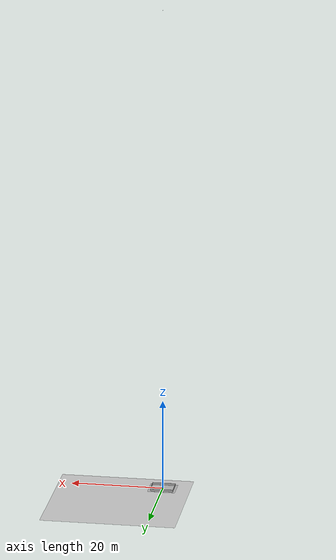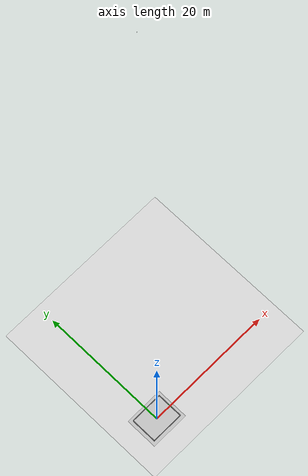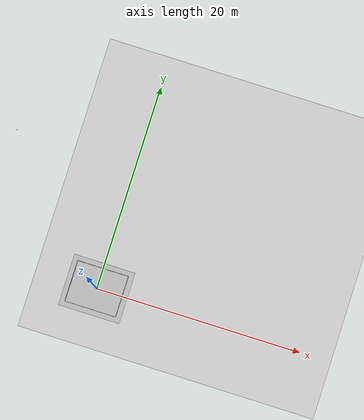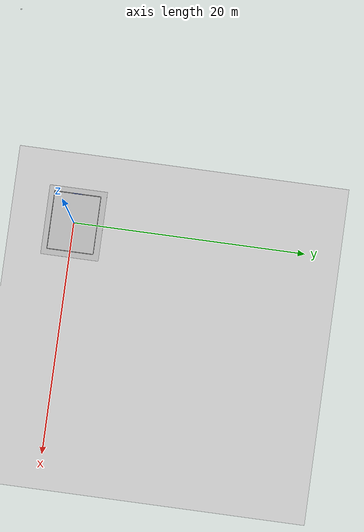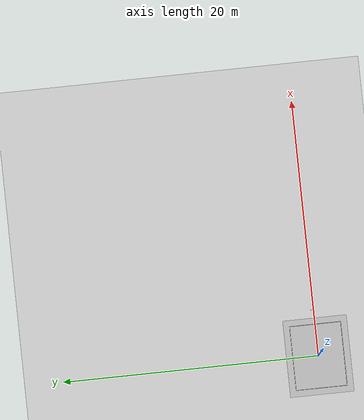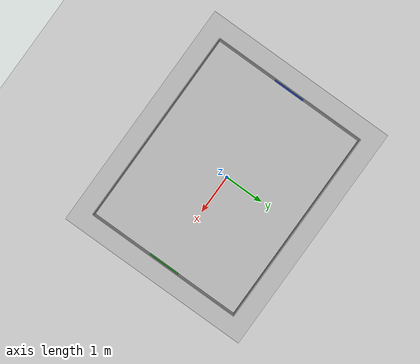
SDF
<sdf version="1.4">
 <world name="aip_world">
  <physics type="ode">
   <max_step_size>0.004</max_step_size>
   <real_time_factor>1</real_time_factor>
   <real_time_update_rate>300</real_time_update_rate>
  </physics>
  <scene><ambient>0.5 0.5 0.5 1.0</ambient><shadows>0</shadows></scene>
  <include><uri>model://ground_plane</uri></include>
  <include><uri>model://sun</uri></include>
  <include><uri>model://aip_field_line</uri></include>
  <light name="light" type="point">
   <cast_shadows>false</cast_shadows>
   <pose>-12 3 1 0 0 0</pose>
   <diffuse>127 127 127 255</diffuse>
   <specular>25 25 25 255</specular>
   <attenuation>
    <range>20.0</range>
    <linear>0.01</linear>
    <constant>0.7</constant>
    <quadratic>0.00</quadratic>
   </attenuation>
  </light>
  <include><uri>model://overview_cam_ros</uri><pose>0 0 7 0 0 0</pose><name>top_camera</name></include>
 </world>
</sdf>

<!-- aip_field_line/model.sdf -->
<sdf version="1.5">
  <model name="aip_field_line">
    <pose>0 0 0 0 0 0</pose>
    <static>true</static>
    <link name="field">
      <pose>0 0 0.01 0 0 0</pose>
      <collision name="collision">
        <geometry>
          <plane>
            <normal>0 0 1</normal>
            <size>6 5</size>
          </plane>
        </geometry>
        <surface>
          <friction>
            <ode>
              <mu>100</mu>
              <mu2>50</mu2>
            </ode>
          </friction>
        </surface>
      </collision>
      <visual name="carpet">
        <cast_shadows>false</cast_shadows>
        <geometry>
          <plane>
            <normal>0 0 1</normal>
            <size>6 5</size>
          </plane>
        </geometry>
        <material>
          <script>
            <uri>model://aip_field_line/materials/scripts/</uri>
            <uri>model://aip_field_line/materials/textures/</uri>
            <name>AIP_Field_line/Image</name>
          </script>
        </material>
      </visual>
    </link>

    <link name="wall_bottom">
      <pose>0 -2 0.25 0 0 1.570796327</pose>
      <visual name="wall_bottom-visual">
        <geometry>
          <box>
            <size>.02 5 .5</size>
          </box>
        </geometry>
        <cast_shadows>false</cast_shadows>
        <material>
          <script>
            <uri>file://media/materials/scripts/gazebo.material</uri>
            <name>Gazebo/Grey</name>
          </script>
        </material>
      </visual>
      <collision name="wall_bottom-collision">
        <geometry>
          <box>
            <size>.02 5 .5</size>
          </box>
        </geometry>
      </collision>
    </link>

    <link name="wall_top">
      <pose>0 2 0.25 0 0 1.570796327</pose>
      <visual name="wall_top-visual">
        <geometry>
          <box>
            <size>.02 5 .5</size>
          </box>
        </geometry>
        <cast_shadows>false</cast_shadows>
        <material>
          <script>
            <uri>file://media/materials/scripts/gazebo.material</uri>
            <name>Gazebo/Grey</name>
          </script>
        </material>
      </visual>
      <collision name="wall_top-collision">
        <geometry>
          <box>
            <size>.02 5 .5</size>
          </box>
        </geometry>
      </collision>
    </link>

    <link name="wall_left">
      <pose>-2.5 0 0.25 0 0 0</pose>
      <visual name="wall_left-visual">
        <geometry>
          <box>
            <size>.02 4 .5</size>
          </box>
        </geometry>
        <cast_shadows>false</cast_shadows>
        <material>
          <script>
            <uri>file://media/materials/scripts/gazebo.material</uri>
            <name>Gazebo/Grey</name>
          </script>
        </material>
      </visual>
      <collision name="wall_left-collision">
        <geometry>
          <box>
            <size>.02 4 .5</size>
          </box>
        </geometry>
      </collision>
    </link>

    <link name="wall_right">
      <pose>2.5 0 0.25 0 0 0</pose>
      <visual name="wall_right-visual">
        <geometry>
          <box>
            <size>.02 4 .5</size>
          </box>
        </geometry>
        <cast_shadows>false</cast_shadows>
        <material>
          <script>
            <uri>file://media/materials/scripts/gazebo.material</uri>
            <name>Gazebo/Grey</name>
          </script>
        </material>
      </visual>
      <collision name="wall_right-collision">
        <geometry>
          <box>
            <size>.02 4 .5</size>
          </box>
        </geometry>
      </collision>
    </link>

    <link name="goal_left">
      <pose>-2.49 0 0.2 0 0 0</pose>
      <visual name="goal_left-visual">
        <geometry>
          <box>
            <size>.01 .8 .4</size>
          </box>
        </geometry>
        <cast_shadows>false</cast_shadows>
        <material>
          <script>
            <uri>file://media/materials/scripts/gazebo.material</uri>
            <name>Gazebo/Blue</name>
          </script>
        </material>
      </visual>
      <collision name="goal_left-collision">
        <geometry>
          <box>
            <size>.01 .8 .4</size>
          </box>
        </geometry>
      </collision>
    </link>

    <link name="goal_right">
      <pose>2.49 0 0.2 0 0 0</pose>
      <visual name="goal_right-visual">
        <geometry>
          <box>
            <size>.01 .8 .4</size>
          </box>
        </geometry>
        <cast_shadows>false</cast_shadows>
        <material>
          <script>
            <uri>file://media/materials/scripts/gazebo.material</uri>
            <name>Gazebo/Green</name>
          </script>
        </material>
      </visual>
      <collision name="goal_right-collision">
        <geometry>
          <box>
            <size>.01 .8 .4</size>
          </box>
        </geometry>
      </collision>
    </link>

  </model>
</sdf>

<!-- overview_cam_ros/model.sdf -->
<sdf version="1.4">
	<model name="top_camera">
		<static>true</static>

		<link name="body">
			<pose>0 2.5 100 0 1.57 1.57</pose>

			<gravity>false</gravity>

			<inertial>
				<mass>0.02</mass>
			</inertial>

			<visual name="visual">
				<pose>0 0 0 0 1.6 0</pose>
				<geometry>
					<cylinder>
						<length>0.02</length>
						<radius>0.03</radius>
					</cylinder>
				</geometry>
				<cast_shadows>false</cast_shadows>
				<material>
					<ambient>0.0 0.0 0.0 0.1</ambient>
					<diffuse>0.0 0.0 0.0 0.11</diffuse>
				</material>
			</visual>

			<sensor type="camera" name="top_camera">
				<update_rate>30.0</update_rate>
				<camera name="top_camera">
					<horizontal_fov>0.13</horizontal_fov>
					<image>
						<width>1200</width>
						<height>700</height>
						<format>R8G8B8</format>
					</image>
					<clip>
						<near>0.02</near>
						<far>300</far>
					</clip>
				</camera>
				<plugin name="camera_controller" filename="libgazebo_ros_camera.so">
					<alwaysOn>true</alwaysOn>
					<updateRate>0.0</updateRate>
					<cameraName>gazebo/camera/top_camera</cameraName>
					<imageTopicName>image_raw</imageTopicName>
					<cameraInfoTopicName>camera_info</cameraInfoTopicName>
					<frameName>top_camera_link</frameName>
					<hackBaseline>0.07</hackBaseline>
					<distortionK1>0.0</distortionK1>
					<distortionK2>0.0</distortionK2>
					<distortionK3>0.0</distortionK3>
					<distortionT1>0.0</distortionT1>
					<distortionT2>0.0</distortionT2>
				</plugin>
			</sensor>
		</link>
	</model>
</sdf>
